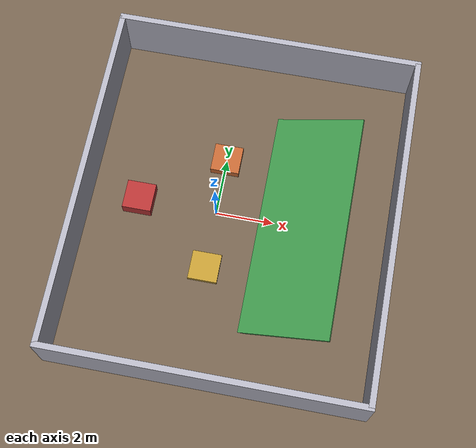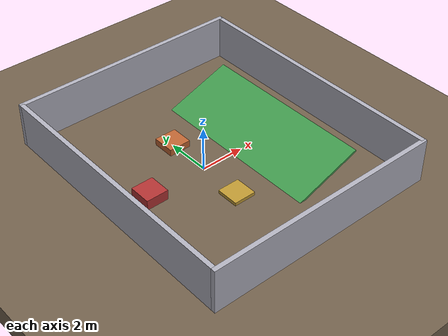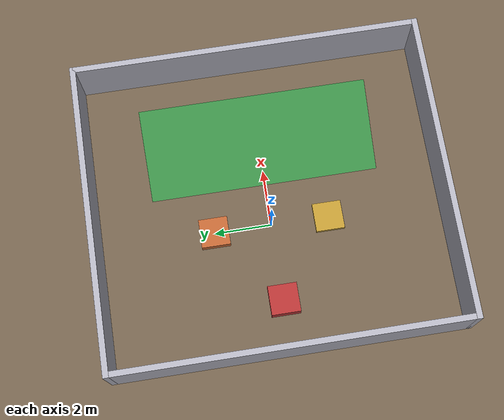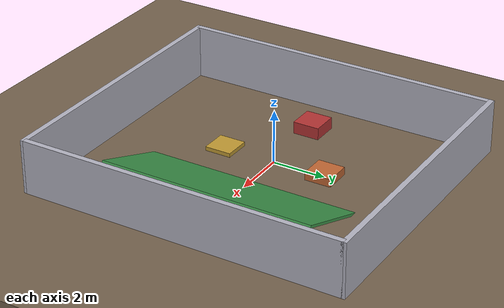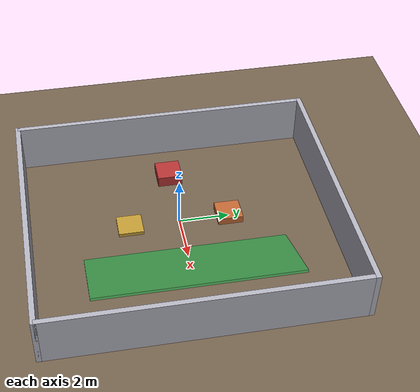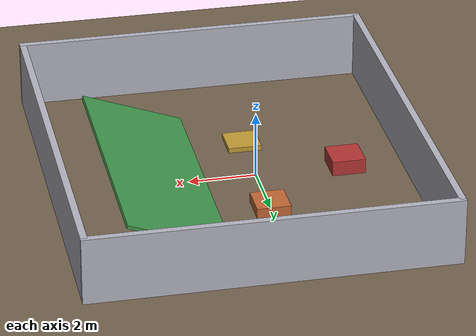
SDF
<?xml version="1.0" ?>
<sdf version="1.8">
  <world name="calibration">
    <physics name="1ms" type="ignored">
      <max_step_size>0.001</max_step_size>
      <real_time_factor>1.0</real_time_factor>
    </physics>

    <plugin filename="gz-sim-physics-system" name="gz::sim::systems::Physics"/>
    <plugin filename="gz-sim-sensors-system" name="gz::sim::systems::Sensors"/>
    <plugin filename="gz-sim-scene-broadcaster-system" name="gz::sim::systems::SceneBroadcaster"/>
    <plugin filename="gz-sim-user-commands-system" name="gz::sim::systems::UserCommands"/>
    <plugin filename="gz-sim-imu-system" name="gz::sim::systems::Imu"/>
    <plugin filename="gz-sim-navsat-system" name="gz::sim::systems::NavSat"/>

    <!-- Same origin as the other worlds' GPS datum, so a GPS-corrected EKF
         keeps world coords == map coords instead of drifting on wheel slip. -->
    <spherical_coordinates>
      <surface_model>EARTH_WGS84</surface_model>
      <world_frame_orientation>ENU</world_frame_orientation>
      <latitude_deg>50.0614</latitude_deg>
      <longitude_deg>19.9365</longitude_deg>
      <elevation>220.0</elevation>
      <heading_deg>0.0</heading_deg>
    </spherical_coordinates>

    <light name="sun" type="directional">
      <cast_shadows>true</cast_shadows>
      <pose>0 0 10 0 0 0</pose>
      <diffuse>0.9 0.9 0.9 1</diffuse>
      <specular>0.2 0.2 0.2 1</specular>
      <direction>-0.4 0.2 -0.9</direction>
    </light>

    <!-- ================= GROUND: top surface at z = 0 ================= -->
    <model name="ground">
      <static>true</static>
      <link name="link">
        <pose>0 0 -0.5 0 0 0</pose>
        <collision name="c"><geometry><box><size>40 40 1.0</size></box></geometry></collision>
        <visual name="v">
          <geometry><box><size>40 40 1.0</size></box></geometry>
          <material><ambient>0.35 0.30 0.25 1</ambient><diffuse>0.45 0.38 0.30 1</diffuse></material>
        </visual>
      </link>
    </model>

    <model name="ramp20">
      <static>true</static>
      <link name="link">
        <pose>3.0 0 0.493 0 -0.349066 0</pose>
        <collision name="c"><geometry><box><size>3.193 8 0.10</size></box></geometry></collision>
        <visual name="v">
          <geometry><box><size>3.193 8 0.10</size></box></geometry>
          <material><ambient>0.20 0.45 0.25 1</ambient><diffuse>0.25 0.60 0.30 1</diffuse></material>
        </visual>
      </link>
    </model>

    <!-- ============ STEP BOXES on flat ground, ~2 m from the rover ============ -->
    <model name="box015">
      <static>true</static>
      <link name="link">
        <pose>0.0 -2.0 0.075 0 0 0</pose>
        <collision name="c"><geometry><box><size>1.0 1.0 0.15</size></box></geometry></collision>
        <visual name="v"><geometry><box><size>1.0 1.0 0.15</size></box></geometry>
          <material><ambient>0.55 0.45 0.15 1</ambient><diffuse>0.75 0.60 0.20 1</diffuse></material></visual>
      </link>
    </model>

    <model name="box030">
      <static>true</static>
      <link name="link">
        <pose>0.0 2.0 0.15 0 0 0</pose>
        <collision name="c"><geometry><box><size>1.0 1.0 0.30</size></box></geometry></collision>
        <visual name="v"><geometry><box><size>1.0 1.0 0.30</size></box></geometry>
          <material><ambient>0.55 0.30 0.15 1</ambient><diffuse>0.75 0.40 0.20 1</diffuse></material></visual>
      </link>
    </model>

    <model name="box045">
      <static>true</static>
      <link name="link">
        <pose>-2.7 0.0 0.225 0 0 0</pose>
        <collision name="c"><geometry><box><size>1.0 1.0 0.45</size></box></geometry></collision>
        <visual name="v"><geometry><box><size>1.0 1.0 0.45</size></box></geometry>
          <material><ambient>0.50 0.15 0.15 1</ambient><diffuse>0.70 0.20 0.20 1</diffuse></material></visual>
      </link>
    </model>

    <!-- ============ ENCLOSING VERTICAL WALLS (Room) ============ -->
    <model name="wall_west">
      <static>true</static>
      <link name="link">
        <pose>-4.5 0.0 1.0 0 0 0</pose>
        <collision name="c"><geometry><box><size>0.2 12.0 2.0</size></box></geometry></collision>
        <visual name="v"><geometry><box><size>0.2 12.0 2.0</size></box></geometry>
          <material><ambient>0.6 0.6 0.65 1</ambient><diffuse>0.7 0.7 0.75 1</diffuse></material></visual>
      </link>
    </model>

    <model name="wall_east">
      <static>true</static>
      <link name="link">
        <pose>6.0 0.0 1.0 0 0 0</pose>
        <collision name="c"><geometry><box><size>0.2 12.0 2.0</size></box></geometry></collision>
        <visual name="v"><geometry><box><size>0.2 12.0 2.0</size></box></geometry>
          <material><ambient>0.6 0.6 0.65 1</ambient><diffuse>0.7 0.7 0.75 1</diffuse></material></visual>
      </link>
    </model>

    <model name="wall_north">
      <static>true</static>
      <link name="link">
        <pose>0.75 6.0 1.0 0 0 0</pose>
        <collision name="c"><geometry><box><size>10.7 0.2 2.0</size></box></geometry></collision>
        <visual name="v"><geometry><box><size>10.7 0.2 2.0</size></box></geometry>
          <material><ambient>0.6 0.6 0.65 1</ambient><diffuse>0.7 0.7 0.75 1</diffuse></material></visual>
      </link>
    </model>

    <model name="wall_south">
      <static>true</static>
      <link name="link">
        <pose>0.75 -6.0 1.0 0 0 0</pose>
        <collision name="c"><geometry><box><size>10.7 0.2 2.0</size></box></geometry></collision>
        <visual name="v"><geometry><box><size>10.7 0.2 2.0</size></box></geometry>
          <material><ambient>0.6 0.6 0.65 1</ambient><diffuse>0.7 0.7 0.75 1</diffuse></material></visual>
      </link>
    </model>

  </world>
</sdf>
